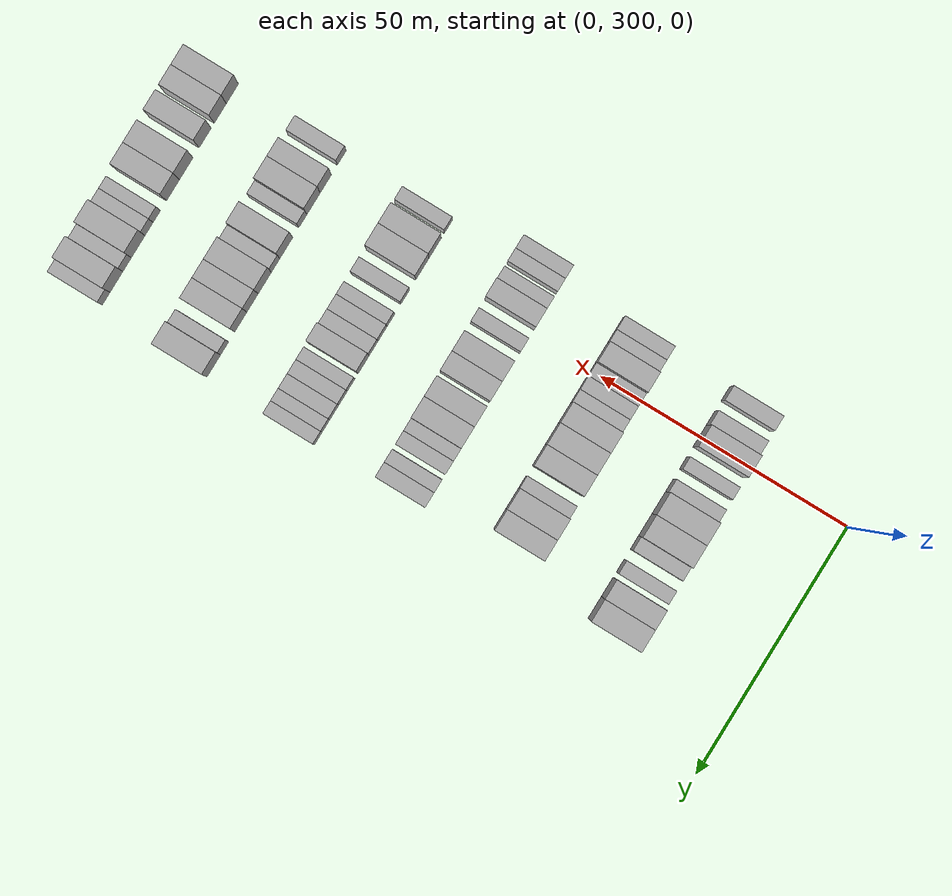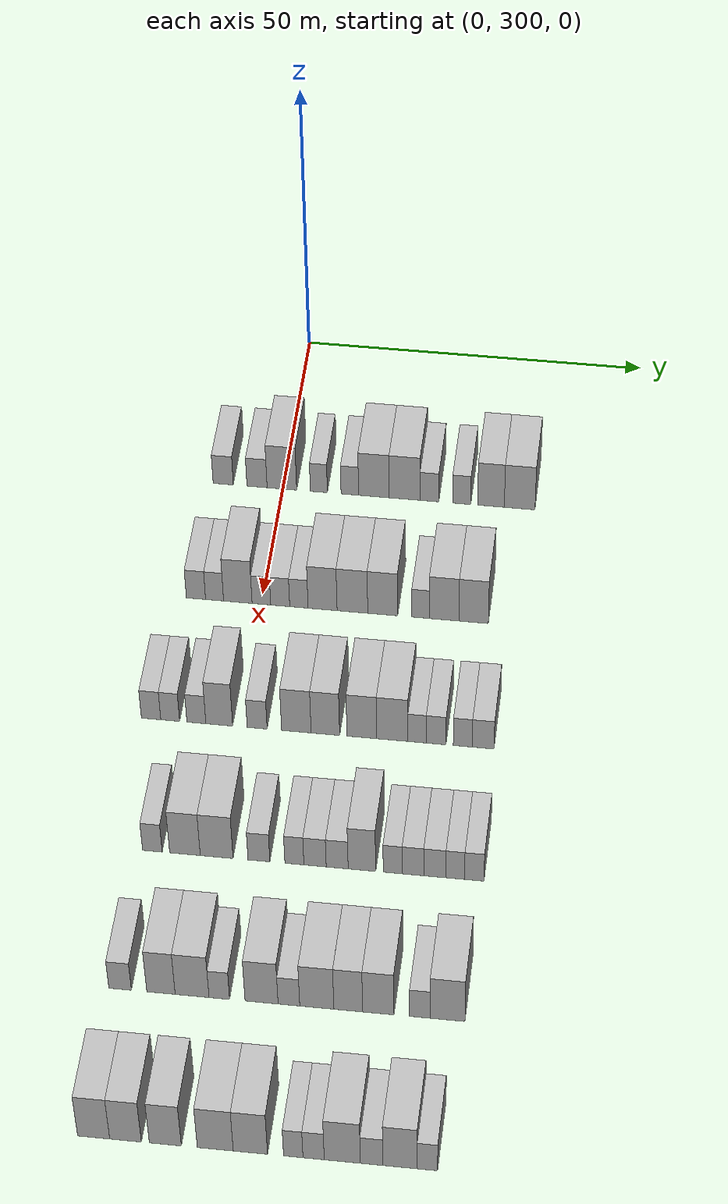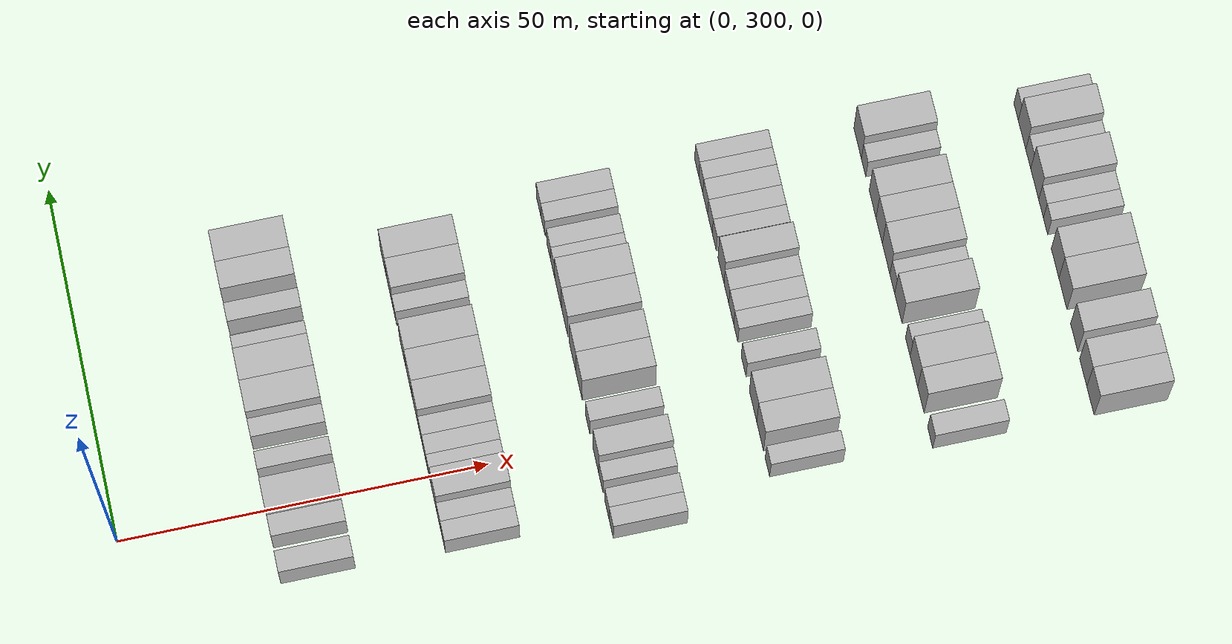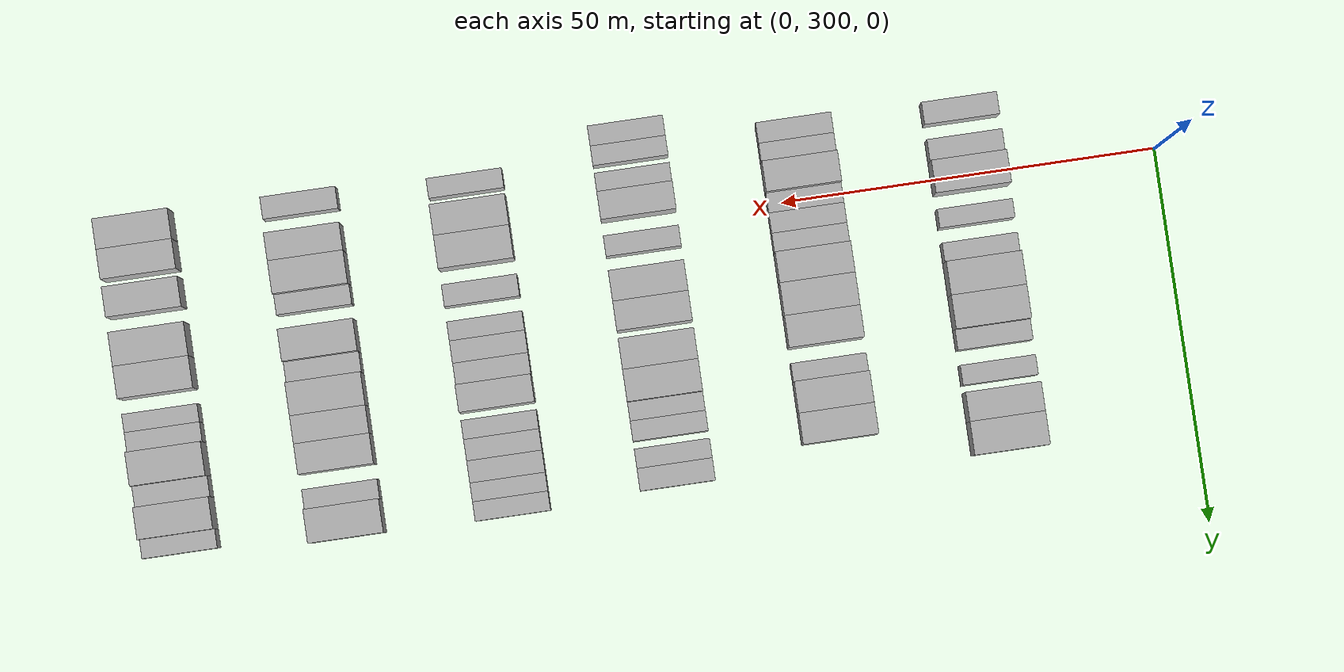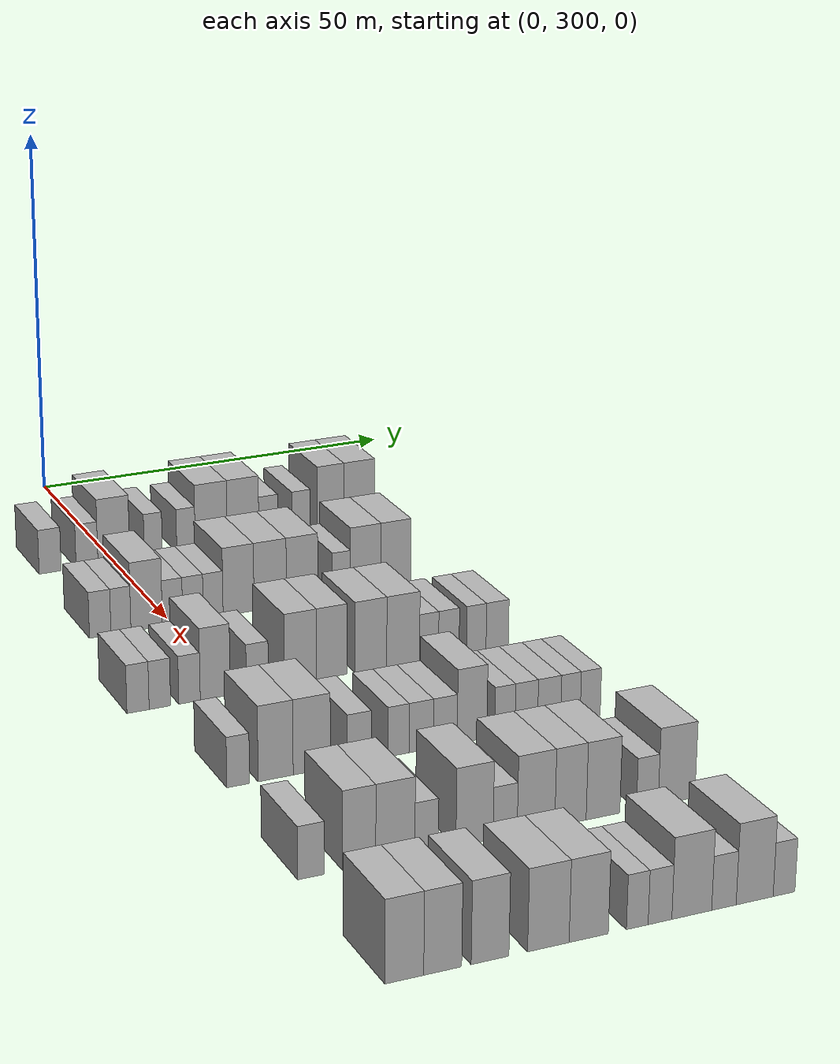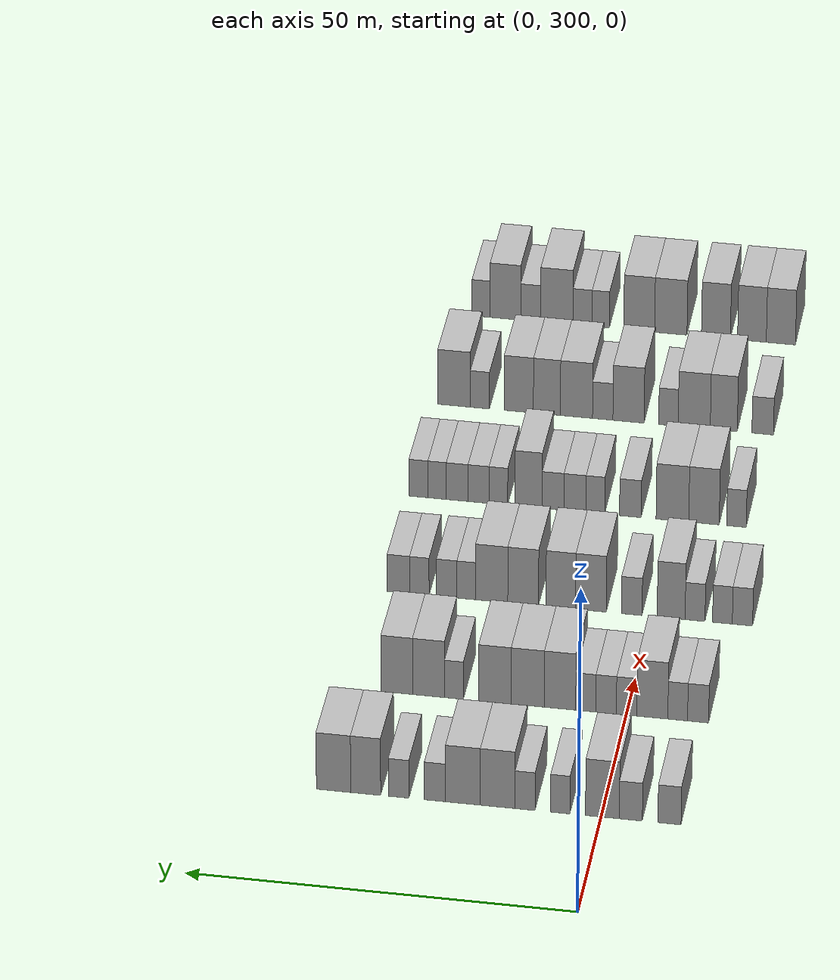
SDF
<sdf version="1.6">
 <world name="default">
  <model name="building_167">
   <static>1</static>
   <pose>25.0000 291.3128 0 0.000000 0.000000 0.000000</pose>
   <link name="link">
    <pose>0 0 3.00 0 0 0</pose>
    <collision name="collision"><geometry><box><size>10.0000 2.9631 6.0000</size></box></geometry></collision>
    <visual name="visual">
     <cast_shadows>0</cast_shadows>
     <geometry><box><size>10.0000 2.9631 6.0000</size></box></geometry>
     <material>
      <script>
       <uri>model://HANNAS_wall/materials/scripts</uri>
       <uri>model://HANNAS_wall/materials/textures</uri>
       <name>vrc/HANNAS_wall</name>
      </script>
     </material>
    </visual>
   </link>
  </model>
  <model name="building_168">
   <static>1</static>
   <pose>25.0000 296.2743 0 0.000000 0.000000 0.000000</pose>
   <link name="link">
    <pose>0 0 3.00 0 0 0</pose>
    <collision name="collision"><geometry><box><size>10.0000 2.9600 6.0000</size></box></geometry></collision>
    <visual name="visual">
     <cast_shadows>0</cast_shadows>
     <geometry><box><size>10.0000 2.9600 6.0000</size></box></geometry>
     <material>
      <script>
       <uri>model://HANNAS_wall/materials/scripts</uri>
       <uri>model://HANNAS_wall/materials/textures</uri>
       <name>vrc/HANNAS_wall</name>
      </script>
     </material>
    </visual>
   </link>
  </model>
  <model name="building_169">
   <static>1</static>
   <pose>25.0000 299.9233 0 0.000000 0.000000 0.000000</pose>
   <link name="link">
    <pose>0 0 4.50 0 0 0</pose>
    <collision name="collision"><geometry><box><size>10.0000 4.3380 9.0000</size></box></geometry></collision>
    <visual name="visual">
     <cast_shadows>0</cast_shadows>
     <geometry><box><size>10.0000 4.3380 9.0000</size></box></geometry>
     <material>
      <script>
       <uri>model://HANNAS_wall/materials/scripts</uri>
       <uri>model://HANNAS_wall/materials/textures</uri>
       <name>vrc/HANNAS_wall</name>
      </script>
     </material>
    </visual>
   </link>
  </model>
  <model name="building_170">
   <static>1</static>
   <pose>25.0000 305.3363 0 0.000000 0.000000 0.000000</pose>
   <link name="link">
    <pose>0 0 3.00 0 0 0</pose>
    <collision name="collision"><geometry><box><size>10.0000 2.4881 6.0000</size></box></geometry></collision>
    <visual name="visual">
     <cast_shadows>0</cast_shadows>
     <geometry><box><size>10.0000 2.4881 6.0000</size></box></geometry>
     <material>
      <script>
       <uri>model://HANNAS_wall/materials/scripts</uri>
       <uri>model://HANNAS_wall/materials/textures</uri>
       <name>vrc/HANNAS_wall</name>
      </script>
     </material>
    </visual>
   </link>
  </model>
  <model name="building_171">
   <static>1</static>
   <pose>25.0000 309.8668 0 0.000000 0.000000 0.000000</pose>
   <link name="link">
    <pose>0 0 3.00 0 0 0</pose>
    <collision name="collision"><geometry><box><size>10.0000 2.5731 6.0000</size></box></geometry></collision>
    <visual name="visual">
     <cast_shadows>0</cast_shadows>
     <geometry><box><size>10.0000 2.5731 6.0000</size></box></geometry>
     <material>
      <script>
       <uri>model://HANNAS_wall/materials/scripts</uri>
       <uri>model://HANNAS_wall/materials/textures</uri>
       <name>vrc/HANNAS_wall</name>
      </script>
     </material>
    </visual>
   </link>
  </model>
  <model name="building_172">
   <static>1</static>
   <pose>25.0000 313.3896 0 0.000000 0.000000 0.000000</pose>
   <link name="link">
    <pose>0 0 4.50 0 0 0</pose>
    <collision name="collision"><geometry><box><size>10.0000 4.4725 9.0000</size></box></geometry></collision>
    <visual name="visual">
     <cast_shadows>0</cast_shadows>
     <geometry><box><size>10.0000 4.4725 9.0000</size></box></geometry>
     <material>
      <script>
       <uri>model://HANNAS_wall/materials/scripts</uri>
       <uri>model://HANNAS_wall/materials/textures</uri>
       <name>vrc/HANNAS_wall</name>
      </script>
     </material>
    </visual>
   </link>
  </model>
  <model name="building_173">
   <static>1</static>
   <pose>25.0000 317.8674 0 0.000000 0.000000 0.000000</pose>
   <link name="link">
    <pose>0 0 4.50 0 0 0</pose>
    <collision name="collision"><geometry><box><size>10.0000 4.4831 9.0000</size></box></geometry></collision>
    <visual name="visual">
     <cast_shadows>0</cast_shadows>
     <geometry><box><size>10.0000 4.4831 9.0000</size></box></geometry>
     <material>
      <script>
       <uri>model://HANNAS_wall/materials/scripts</uri>
       <uri>model://HANNAS_wall/materials/textures</uri>
       <name>vrc/HANNAS_wall</name>
      </script>
     </material>
    </visual>
   </link>
  </model>
  <model name="building_174">
   <static>1</static>
   <pose>25.0000 321.4731 0 0.000000 0.000000 0.000000</pose>
   <link name="link">
    <pose>0 0 3.00 0 0 0</pose>
    <collision name="collision"><geometry><box><size>10.0000 2.7282 6.0000</size></box></geometry></collision>
    <visual name="visual">
     <cast_shadows>0</cast_shadows>
     <geometry><box><size>10.0000 2.7282 6.0000</size></box></geometry>
     <material>
      <script>
       <uri>model://HANNAS_wall/materials/scripts</uri>
       <uri>model://HANNAS_wall/materials/textures</uri>
       <name>vrc/HANNAS_wall</name>
      </script>
     </material>
    </visual>
   </link>
  </model>
  <model name="building_175">
   <static>1</static>
   <pose>25.0000 326.1639 0 0.000000 0.000000 0.000000</pose>
   <link name="link">
    <pose>0 0 3.00 0 0 0</pose>
    <collision name="collision"><geometry><box><size>10.0000 2.6536 6.0000</size></box></geometry></collision>
    <visual name="visual">
     <cast_shadows>0</cast_shadows>
     <geometry><box><size>10.0000 2.6536 6.0000</size></box></geometry>
     <material>
      <script>
       <uri>model://HANNAS_wall/materials/scripts</uri>
       <uri>model://HANNAS_wall/materials/textures</uri>
       <name>vrc/HANNAS_wall</name>
      </script>
     </material>
    </visual>
   </link>
  </model>
  <model name="building_176">
   <static>1</static>
   <pose>25.0000 330.4245 0 0.000000 0.000000 0.000000</pose>
   <link name="link">
    <pose>0 0 4.50 0 0 0</pose>
    <collision name="collision"><geometry><box><size>10.0000 3.8675 9.0000</size></box></geometry></collision>
    <visual name="visual">
     <cast_shadows>0</cast_shadows>
     <geometry><box><size>10.0000 3.8675 9.0000</size></box></geometry>
     <material>
      <script>
       <uri>model://HANNAS_wall/materials/scripts</uri>
       <uri>model://HANNAS_wall/materials/textures</uri>
       <name>vrc/HANNAS_wall</name>
      </script>
     </material>
    </visual>
   </link>
  </model>
  <model name="building_177">
   <static>1</static>
   <pose>25.0000 334.5843 0 0.000000 0.000000 0.000000</pose>
   <link name="link">
    <pose>0 0 4.50 0 0 0</pose>
    <collision name="collision"><geometry><box><size>10.0000 4.4522 9.0000</size></box></geometry></collision>
    <visual name="visual">
     <cast_shadows>0</cast_shadows>
     <geometry><box><size>10.0000 4.4522 9.0000</size></box></geometry>
     <material>
      <script>
       <uri>model://HANNAS_wall/materials/scripts</uri>
       <uri>model://HANNAS_wall/materials/textures</uri>
       <name>vrc/HANNAS_wall</name>
      </script>
     </material>
    </visual>
   </link>
  </model>
  <model name="building_344">
   <static>1</static>
   <pose>47.0000 290.7216 0 0.000000 0.000000 0.000000</pose>
   <link name="link">
    <pose>0 0 3.00 0 0 0</pose>
    <collision name="collision"><geometry><box><size>10.0000 2.7421 6.0000</size></box></geometry></collision>
    <visual name="visual">
     <cast_shadows>0</cast_shadows>
     <geometry><box><size>10.0000 2.7421 6.0000</size></box></geometry>
     <material>
      <script>
       <uri>model://HANNAS_wall/materials/scripts</uri>
       <uri>model://HANNAS_wall/materials/textures</uri>
       <name>vrc/HANNAS_wall</name>
      </script>
     </material>
    </visual>
   </link>
  </model>
  <model name="building_345">
   <static>1</static>
   <pose>47.0000 293.3765 0 0.000000 0.000000 0.000000</pose>
   <link name="link">
    <pose>0 0 3.00 0 0 0</pose>
    <collision name="collision"><geometry><box><size>10.0000 2.5679 6.0000</size></box></geometry></collision>
    <visual name="visual">
     <cast_shadows>0</cast_shadows>
     <geometry><box><size>10.0000 2.5679 6.0000</size></box></geometry>
     <material>
      <script>
       <uri>model://HANNAS_wall/materials/scripts</uri>
       <uri>model://HANNAS_wall/materials/textures</uri>
       <name>vrc/HANNAS_wall</name>
      </script>
     </material>
    </visual>
   </link>
  </model>
  <model name="building_346">
   <static>1</static>
   <pose>47.0000 296.6926 0 0.000000 0.000000 0.000000</pose>
   <link name="link">
    <pose>0 0 4.50 0 0 0</pose>
    <collision name="collision"><geometry><box><size>10.0000 4.0642 9.0000</size></box></geometry></collision>
    <visual name="visual">
     <cast_shadows>0</cast_shadows>
     <geometry><box><size>10.0000 4.0642 9.0000</size></box></geometry>
     <material>
      <script>
       <uri>model://HANNAS_wall/materials/scripts</uri>
       <uri>model://HANNAS_wall/materials/textures</uri>
       <name>vrc/HANNAS_wall</name>
      </script>
     </material>
    </visual>
   </link>
  </model>
  <model name="building_347">
   <static>1</static>
   <pose>47.0000 300.0499 0 0.000000 0.000000 0.000000</pose>
   <link name="link">
    <pose>0 0 3.00 0 0 0</pose>
    <collision name="collision"><geometry><box><size>10.0000 2.6505 6.0000</size></box></geometry></collision>
    <visual name="visual">
     <cast_shadows>0</cast_shadows>
     <geometry><box><size>10.0000 2.6505 6.0000</size></box></geometry>
     <material>
      <script>
       <uri>model://HANNAS_wall/materials/scripts</uri>
       <uri>model://HANNAS_wall/materials/textures</uri>
       <name>vrc/HANNAS_wall</name>
      </script>
     </material>
    </visual>
   </link>
  </model>
  <model name="building_348">
   <static>1</static>
   <pose>47.0000 302.7244 0 0.000000 0.000000 0.000000</pose>
   <link name="link">
    <pose>0 0 3.00 0 0 0</pose>
    <collision name="collision"><geometry><box><size>10.0000 2.6985 6.0000</size></box></geometry></collision>
    <visual name="visual">
     <cast_shadows>0</cast_shadows>
     <geometry><box><size>10.0000 2.6985 6.0000</size></box></geometry>
     <material>
      <script>
       <uri>model://HANNAS_wall/materials/scripts</uri>
       <uri>model://HANNAS_wall/materials/textures</uri>
       <name>vrc/HANNAS_wall</name>
      </script>
     </material>
    </visual>
   </link>
  </model>
  <model name="building_349">
   <static>1</static>
   <pose>47.0000 305.3819 0 0.000000 0.000000 0.000000</pose>
   <link name="link">
    <pose>0 0 3.00 0 0 0</pose>
    <collision name="collision"><geometry><box><size>10.0000 2.6165 6.0000</size></box></geometry></collision>
    <visual name="visual">
     <cast_shadows>0</cast_shadows>
     <geometry><box><size>10.0000 2.6165 6.0000</size></box></geometry>
     <material>
      <script>
       <uri>model://HANNAS_wall/materials/scripts</uri>
       <uri>model://HANNAS_wall/materials/textures</uri>
       <name>vrc/HANNAS_wall</name>
      </script>
     </material>
    </visual>
   </link>
  </model>
  <model name="building_350">
   <static>1</static>
   <pose>47.0000 308.7485 0 0.000000 0.000000 0.000000</pose>
   <link name="link">
    <pose>0 0 4.50 0 0 0</pose>
    <collision name="collision"><geometry><box><size>10.0000 4.1168 9.0000</size></box></geometry></collision>
    <visual name="visual">
     <cast_shadows>0</cast_shadows>
     <geometry><box><size>10.0000 4.1168 9.0000</size></box></geometry>
     <material>
      <script>
       <uri>model://HANNAS_wall/materials/scripts</uri>
       <uri>model://HANNAS_wall/materials/textures</uri>
       <name>vrc/HANNAS_wall</name>
      </script>
     </material>
    </visual>
   </link>
  </model>
  <model name="building_351">
   <static>1</static>
   <pose>47.0000 312.9780 0 0.000000 0.000000 0.000000</pose>
   <link name="link">
    <pose>0 0 4.50 0 0 0</pose>
    <collision name="collision"><geometry><box><size>10.0000 4.3422 9.0000</size></box></geometry></collision>
    <visual name="visual">
     <cast_shadows>0</cast_shadows>
     <geometry><box><size>10.0000 4.3422 9.0000</size></box></geometry>
     <material>
      <script>
       <uri>model://HANNAS_wall/materials/scripts</uri>
       <uri>model://HANNAS_wall/materials/textures</uri>
       <name>vrc/HANNAS_wall</name>
      </script>
     </material>
    </visual>
   </link>
  </model>
  <model name="building_352">
   <static>1</static>
   <pose>47.0000 317.2673 0 0.000000 0.000000 0.000000</pose>
   <link name="link">
    <pose>0 0 4.50 0 0 0</pose>
    <collision name="collision"><geometry><box><size>10.0000 4.2363 9.0000</size></box></geometry></collision>
    <visual name="visual">
     <cast_shadows>0</cast_shadows>
     <geometry><box><size>10.0000 4.2363 9.0000</size></box></geometry>
     <material>
      <script>
       <uri>model://HANNAS_wall/materials/scripts</uri>
       <uri>model://HANNAS_wall/materials/textures</uri>
       <name>vrc/HANNAS_wall</name>
      </script>
     </material>
    </visual>
   </link>
  </model>
  <model name="building_353">
   <static>1</static>
   <pose>47.0000 322.6196 0 0.000000 0.000000 0.000000</pose>
   <link name="link">
    <pose>0 0 3.00 0 0 0</pose>
    <collision name="collision"><geometry><box><size>10.0000 2.4683 6.0000</size></box></geometry></collision>
    <visual name="visual">
     <cast_shadows>0</cast_shadows>
     <geometry><box><size>10.0000 2.4683 6.0000</size></box></geometry>
     <material>
      <script>
       <uri>model://HANNAS_wall/materials/scripts</uri>
       <uri>model://HANNAS_wall/materials/textures</uri>
       <name>vrc/HANNAS_wall</name>
      </script>
     </material>
    </visual>
   </link>
  </model>
  <model name="building_354">
   <static>1</static>
   <pose>47.0000 325.9501 0 0.000000 0.000000 0.000000</pose>
   <link name="link">
    <pose>0 0 4.50 0 0 0</pose>
    <collision name="collision"><geometry><box><size>10.0000 4.1927 9.0000</size></box></geometry></collision>
    <visual name="visual">
     <cast_shadows>0</cast_shadows>
     <geometry><box><size>10.0000 4.1927 9.0000</size></box></geometry>
     <material>
      <script>
       <uri>model://HANNAS_wall/materials/scripts</uri>
       <uri>model://HANNAS_wall/materials/textures</uri>
       <name>vrc/HANNAS_wall</name>
      </script>
     </material>
    </visual>
   </link>
  </model>
  <model name="building_355">
   <static>1</static>
   <pose>47.0000 330.1200 0 0.000000 0.000000 0.000000</pose>
   <link name="link">
    <pose>0 0 4.50 0 0 0</pose>
    <collision name="collision"><geometry><box><size>10.0000 4.1470 9.0000</size></box></geometry></collision>
    <visual name="visual">
     <cast_shadows>0</cast_shadows>
     <geometry><box><size>10.0000 4.1470 9.0000</size></box></geometry>
     <material>
      <script>
       <uri>model://HANNAS_wall/materials/scripts</uri>
       <uri>model://HANNAS_wall/materials/textures</uri>
       <name>vrc/HANNAS_wall</name>
      </script>
     </material>
    </visual>
   </link>
  </model>
  <model name="building_530">
   <static>1</static>
   <pose>69.0000 287.9238 0 0.000000 0.000000 0.000000</pose>
   <link name="link">
    <pose>0 0 3.00 0 0 0</pose>
    <collision name="collision"><geometry><box><size>10.0000 2.6839 6.0000</size></box></geometry></collision>
    <visual name="visual">
     <cast_shadows>0</cast_shadows>
     <geometry><box><size>10.0000 2.6839 6.0000</size></box></geometry>
     <material>
      <script>
       <uri>model://HANNAS_wall/materials/scripts</uri>
       <uri>model://HANNAS_wall/materials/textures</uri>
       <name>vrc/HANNAS_wall</name>
      </script>
     </material>
    </visual>
   </link>
  </model>
  <model name="building_531">
   <static>1</static>
   <pose>69.0000 290.5735 0 0.000000 0.000000 0.000000</pose>
   <link name="link">
    <pose>0 0 3.00 0 0 0</pose>
    <collision name="collision"><geometry><box><size>10.0000 2.6155 6.0000</size></box></geometry></collision>
    <visual name="visual">
     <cast_shadows>0</cast_shadows>
     <geometry><box><size>10.0000 2.6155 6.0000</size></box></geometry>
     <material>
      <script>
       <uri>model://HANNAS_wall/materials/scripts</uri>
       <uri>model://HANNAS_wall/materials/textures</uri>
       <name>vrc/HANNAS_wall</name>
      </script>
     </material>
    </visual>
   </link>
  </model>
  <model name="building_532">
   <static>1</static>
   <pose>69.0000 294.1956 0 0.000000 0.000000 0.000000</pose>
   <link name="link">
    <pose>0 0 3.00 0 0 0</pose>
    <collision name="collision"><geometry><box><size>10.0000 2.6287 6.0000</size></box></geometry></collision>
    <visual name="visual">
     <cast_shadows>0</cast_shadows>
     <geometry><box><size>10.0000 2.6287 6.0000</size></box></geometry>
     <material>
      <script>
       <uri>model://HANNAS_wall/materials/scripts</uri>
       <uri>model://HANNAS_wall/materials/textures</uri>
       <name>vrc/HANNAS_wall</name>
      </script>
     </material>
    </visual>
   </link>
  </model>
  <model name="building_533">
   <static>1</static>
   <pose>69.0000 297.3626 0 0.000000 0.000000 0.000000</pose>
   <link name="link">
    <pose>0 0 4.50 0 0 0</pose>
    <collision name="collision"><geometry><box><size>10.0000 3.7054 9.0000</size></box></geometry></collision>
    <visual name="visual">
     <cast_shadows>0</cast_shadows>
     <geometry><box><size>10.0000 3.7054 9.0000</size></box></geometry>
     <material>
      <script>
       <uri>model://HANNAS_wall/materials/scripts</uri>
       <uri>model://HANNAS_wall/materials/textures</uri>
       <name>vrc/HANNAS_wall</name>
      </script>
     </material>
    </visual>
   </link>
  </model>
  <model name="building_534">
   <static>1</static>
   <pose>69.0000 302.5916 0 0.000000 0.000000 0.000000</pose>
   <link name="link">
    <pose>0 0 3.00 0 0 0</pose>
    <collision name="collision"><geometry><box><size>10.0000 2.7524 6.0000</size></box></geometry></collision>
    <visual name="visual">
     <cast_shadows>0</cast_shadows>
     <geometry><box><size>10.0000 2.7524 6.0000</size></box></geometry>
     <material>
      <script>
       <uri>model://HANNAS_wall/materials/scripts</uri>
       <uri>model://HANNAS_wall/materials/textures</uri>
       <name>vrc/HANNAS_wall</name>
      </script>
     </material>
    </visual>
   </link>
  </model>
  <model name="building_535">
   <static>1</static>
   <pose>69.0000 308.0016 0 0.000000 0.000000 0.000000</pose>
   <link name="link">
    <pose>0 0 4.50 0 0 0</pose>
    <collision name="collision"><geometry><box><size>10.0000 4.0677 9.0000</size></box></geometry></collision>
    <visual name="visual">
     <cast_shadows>0</cast_shadows>
     <geometry><box><size>10.0000 4.0677 9.0000</size></box></geometry>
     <material>
      <script>
       <uri>model://HANNAS_wall/materials/scripts</uri>
       <uri>model://HANNAS_wall/materials/textures</uri>
       <name>vrc/HANNAS_wall</name>
      </script>
     </material>
    </visual>
   </link>
  </model>
  <model name="building_536">
   <static>1</static>
   <pose>69.0000 311.9994 0 0.000000 0.000000 0.000000</pose>
   <link name="link">
    <pose>0 0 4.50 0 0 0</pose>
    <collision name="collision"><geometry><box><size>10.0000 3.9279 9.0000</size></box></geometry></collision>
    <visual name="visual">
     <cast_shadows>0</cast_shadows>
     <geometry><box><size>10.0000 3.9279 9.0000</size></box></geometry>
     <material>
      <script>
       <uri>model://HANNAS_wall/materials/scripts</uri>
       <uri>model://HANNAS_wall/materials/textures</uri>
       <name>vrc/HANNAS_wall</name>
      </script>
     </material>
    </visual>
   </link>
  </model>
  <model name="building_537">
   <static>1</static>
   <pose>69.0000 317.0117 0 0.000000 0.000000 0.000000</pose>
   <link name="link">
    <pose>0 0 4.50 0 0 0</pose>
    <collision name="collision"><geometry><box><size>10.0000 4.0968 9.0000</size></box></geometry></collision>
    <visual name="visual">
     <cast_shadows>0</cast_shadows>
     <geometry><box><size>10.0000 4.0968 9.0000</size></box></geometry>
     <material>
      <script>
       <uri>model://HANNAS_wall/materials/scripts</uri>
       <uri>model://HANNAS_wall/materials/textures</uri>
       <name>vrc/HANNAS_wall</name>
      </script>
     </material>
    </visual>
   </link>
  </model>
  <model name="building_538">
   <static>1</static>
   <pose>69.0000 321.1998 0 0.000000 0.000000 0.000000</pose>
   <link name="link">
    <pose>0 0 4.50 0 0 0</pose>
    <collision name="collision"><geometry><box><size>10.0000 4.2794 9.0000</size></box></geometry></collision>
    <visual name="visual">
     <cast_shadows>0</cast_shadows>
     <geometry><box><size>10.0000 4.2794 9.0000</size></box></geometry>
     <material>
      <script>
       <uri>model://HANNAS_wall/materials/scripts</uri>
       <uri>model://HANNAS_wall/materials/textures</uri>
       <name>vrc/HANNAS_wall</name>
      </script>
     </material>
    </visual>
   </link>
  </model>
  <model name="building_539">
   <static>1</static>
   <pose>69.0000 324.5851 0 0.000000 0.000000 0.000000</pose>
   <link name="link">
    <pose>0 0 3.00 0 0 0</pose>
    <collision name="collision"><geometry><box><size>10.0000 2.4911 6.0000</size></box></geometry></collision>
    <visual name="visual">
     <cast_shadows>0</cast_shadows>
     <geometry><box><size>10.0000 2.4911 6.0000</size></box></geometry>
     <material>
      <script>
       <uri>model://HANNAS_wall/materials/scripts</uri>
       <uri>model://HANNAS_wall/materials/textures</uri>
       <name>vrc/HANNAS_wall</name>
      </script>
     </material>
    </visual>
   </link>
  </model>
  <model name="building_540">
   <static>1</static>
   <pose>69.0000 327.1861 0 0.000000 0.000000 0.000000</pose>
   <link name="link">
    <pose>0 0 3.00 0 0 0</pose>
    <collision name="collision"><geometry><box><size>10.0000 2.7109 6.0000</size></box></geometry></collision>
    <visual name="visual">
     <cast_shadows>0</cast_shadows>
     <geometry><box><size>10.0000 2.7109 6.0000</size></box></geometry>
     <material>
      <script>
       <uri>model://HANNAS_wall/materials/scripts</uri>
       <uri>model://HANNAS_wall/materials/textures</uri>
       <name>vrc/HANNAS_wall</name>
      </script>
     </material>
    </visual>
   </link>
  </model>
  <model name="building_541">
   <static>1</static>
   <pose>69.0000 330.8364 0 0.000000 0.000000 0.000000</pose>
   <link name="link">
    <pose>0 0 3.00 0 0 0</pose>
    <collision name="collision"><geometry><box><size>10.0000 2.5897 6.0000</size></box></geometry></collision>
    <visual name="visual">
     <cast_shadows>0</cast_shadows>
     <geometry><box><size>10.0000 2.5897 6.0000</size></box></geometry>
     <material>
      <script>
       <uri>model://HANNAS_wall/materials/scripts</uri>
       <uri>model://HANNAS_wall/materials/textures</uri>
       <name>vrc/HANNAS_wall</name>
      </script>
     </material>
    </visual>
   </link>
  </model>
  <model name="building_542">
   <static>1</static>
   <pose>69.0000 333.6240 0 0.000000 0.000000 0.000000</pose>
   <link name="link">
    <pose>0 0 3.00 0 0 0</pose>
    <collision name="collision"><geometry><box><size>10.0000 2.9855 6.0000</size></box></geometry></collision>
    <visual name="visual">
     <cast_shadows>0</cast_shadows>
     <geometry><box><size>10.0000 2.9855 6.0000</size></box></geometry>
     <material>
      <script>
       <uri>model://HANNAS_wall/materials/scripts</uri>
       <uri>model://HANNAS_wall/materials/textures</uri>
       <name>vrc/HANNAS_wall</name>
      </script>
     </material>
    </visual>
   </link>
  </model>
  <model name="building_729">
   <static>1</static>
   <pose>91.0000 291.7099 0 0.000000 0.000000 0.000000</pose>
   <link name="link">
    <pose>0 0 3.00 0 0 0</pose>
    <collision name="collision"><geometry><box><size>10.0000 2.6363 6.0000</size></box></geometry></collision>
    <visual name="visual">
     <cast_shadows>0</cast_shadows>
     <geometry><box><size>10.0000 2.6363 6.0000</size></box></geometry>
     <material>
      <script>
       <uri>model://HANNAS_wall/materials/scripts</uri>
       <uri>model://HANNAS_wall/materials/textures</uri>
       <name>vrc/HANNAS_wall</name>
      </script>
     </material>
    </visual>
   </link>
  </model>
  <model name="building_730">
   <static>1</static>
   <pose>91.0000 296.0781 0 0.000000 0.000000 0.000000</pose>
   <link name="link">
    <pose>0 0 4.50 0 0 0</pose>
    <collision name="collision"><geometry><box><size>10.0000 4.1002 9.0000</size></box></geometry></collision>
    <visual name="visual">
     <cast_shadows>0</cast_shadows>
     <geometry><box><size>10.0000 4.1002 9.0000</size></box></geometry>
     <material>
      <script>
       <uri>model://HANNAS_wall/materials/scripts</uri>
       <uri>model://HANNAS_wall/materials/textures</uri>
       <name>vrc/HANNAS_wall</name>
      </script>
     </material>
    </visual>
   </link>
  </model>
  <model name="building_731">
   <static>1</static>
   <pose>91.0000 300.3259 0 0.000000 0.000000 0.000000</pose>
   <link name="link">
    <pose>0 0 4.50 0 0 0</pose>
    <collision name="collision"><geometry><box><size>10.0000 4.3953 9.0000</size></box></geometry></collision>
    <visual name="visual">
     <cast_shadows>0</cast_shadows>
     <geometry><box><size>10.0000 4.3953 9.0000</size></box></geometry>
     <material>
      <script>
       <uri>model://HANNAS_wall/materials/scripts</uri>
       <uri>model://HANNAS_wall/materials/textures</uri>
       <name>vrc/HANNAS_wall</name>
      </script>
     </material>
    </visual>
   </link>
  </model>
  <model name="building_732">
   <static>1</static>
   <pose>91.0000 305.9848 0 0.000000 0.000000 0.000000</pose>
   <link name="link">
    <pose>0 0 3.00 0 0 0</pose>
    <collision name="collision"><geometry><box><size>10.0000 2.9226 6.0000</size></box></geometry></collision>
    <visual name="visual">
     <cast_shadows>0</cast_shadows>
     <geometry><box><size>10.0000 2.9226 6.0000</size></box></geometry>
     <material>
      <script>
       <uri>model://HANNAS_wall/materials/scripts</uri>
       <uri>model://HANNAS_wall/materials/textures</uri>
       <name>vrc/HANNAS_wall</name>
      </script>
     </material>
    </visual>
   </link>
  </model>
  <model name="building_733">
   <static>1</static>
   <pose>91.0000 310.7127 0 0.000000 0.000000 0.000000</pose>
   <link name="link">
    <pose>0 0 3.00 0 0 0</pose>
    <collision name="collision"><geometry><box><size>10.0000 2.5331 6.0000</size></box></geometry></collision>
    <visual name="visual">
     <cast_shadows>0</cast_shadows>
     <geometry><box><size>10.0000 2.5331 6.0000</size></box></geometry>
     <material>
      <script>
       <uri>model://HANNAS_wall/materials/scripts</uri>
       <uri>model://HANNAS_wall/materials/textures</uri>
       <name>vrc/HANNAS_wall</name>
      </script>
     </material>
    </visual>
   </link>
  </model>
  <model name="building_734">
   <static>1</static>
   <pose>91.0000 313.4680 0 0.000000 0.000000 0.000000</pose>
   <link name="link">
    <pose>0 0 3.00 0 0 0</pose>
    <collision name="collision"><geometry><box><size>10.0000 2.9776 6.0000</size></box></geometry></collision>
    <visual name="visual">
     <cast_shadows>0</cast_shadows>
     <geometry><box><size>10.0000 2.9776 6.0000</size></box></geometry>
     <material>
      <script>
       <uri>model://HANNAS_wall/materials/scripts</uri>
       <uri>model://HANNAS_wall/materials/textures</uri>
       <name>vrc/HANNAS_wall</name>
      </script>
     </material>
    </visual>
   </link>
  </model>
  <model name="building_735">
   <static>1</static>
   <pose>91.0000 316.4192 0 0.000000 0.000000 0.000000</pose>
   <link name="link">
    <pose>0 0 3.00 0 0 0</pose>
    <collision name="collision"><geometry><box><size>10.0000 2.9248 6.0000</size></box></geometry></collision>
    <visual name="visual">
     <cast_shadows>0</cast_shadows>
     <geometry><box><size>10.0000 2.9248 6.0000</size></box></geometry>
     <material>
      <script>
       <uri>model://HANNAS_wall/materials/scripts</uri>
       <uri>model://HANNAS_wall/materials/textures</uri>
       <name>vrc/HANNAS_wall</name>
      </script>
     </material>
    </visual>
   </link>
  </model>
  <model name="building_736">
   <static>1</static>
   <pose>91.0000 319.7151 0 0.000000 0.000000 0.000000</pose>
   <link name="link">
    <pose>0 0 4.50 0 0 0</pose>
    <collision name="collision"><geometry><box><size>10.0000 3.6670 9.0000</size></box></geometry></collision>
    <visual name="visual">
     <cast_shadows>0</cast_shadows>
     <geometry><box><size>10.0000 3.6670 9.0000</size></box></geometry>
     <material>
      <script>
       <uri>model://HANNAS_wall/materials/scripts</uri>
       <uri>model://HANNAS_wall/materials/textures</uri>
       <name>vrc/HANNAS_wall</name>
      </script>
     </material>
    </visual>
   </link>
  </model>
  <model name="building_737">
   <static>1</static>
   <pose>91.0000 323.8103 0 0.000000 0.000000 0.000000</pose>
   <link name="link">
    <pose>0 0 3.00 0 0 0</pose>
    <collision name="collision"><geometry><box><size>10.0000 2.5235 6.0000</size></box></geometry></collision>
    <visual name="visual">
     <cast_shadows>0</cast_shadows>
     <geometry><box><size>10.0000 2.5235 6.0000</size></box></geometry>
     <material>
      <script>
       <uri>model://HANNAS_wall/materials/scripts</uri>
       <uri>model://HANNAS_wall/materials/textures</uri>
       <name>vrc/HANNAS_wall</name>
      </script>
     </material>
    </visual>
   </link>
  </model>
  <model name="building_738">
   <static>1</static>
   <pose>91.0000 326.4928 0 0.000000 0.000000 0.000000</pose>
   <link name="link">
    <pose>0 0 3.00 0 0 0</pose>
    <collision name="collision"><geometry><box><size>10.0000 2.8413 6.0000</size></box></geometry></collision>
    <visual name="visual">
     <cast_shadows>0</cast_shadows>
     <geometry><box><size>10.0000 2.8413 6.0000</size></box></geometry>
     <material>
      <script>
       <uri>model://HANNAS_wall/materials/scripts</uri>
       <uri>model://HANNAS_wall/materials/textures</uri>
       <name>vrc/HANNAS_wall</name>
      </script>
     </material>
    </visual>
   </link>
  </model>
  <model name="building_739">
   <static>1</static>
   <pose>91.0000 329.3805 0 0.000000 0.000000 0.000000</pose>
   <link name="link">
    <pose>0 0 3.00 0 0 0</pose>
    <collision name="collision"><geometry><box><size>10.0000 2.9342 6.0000</size></box></geometry></collision>
    <visual name="visual">
     <cast_shadows>0</cast_shadows>
     <geometry><box><size>10.0000 2.9342 6.0000</size></box></geometry>
     <material>
      <script>
       <uri>model://HANNAS_wall/materials/scripts</uri>
       <uri>model://HANNAS_wall/materials/textures</uri>
       <name>vrc/HANNAS_wall</name>
      </script>
     </material>
    </visual>
   </link>
  </model>
  <model name="building_740">
   <static>1</static>
   <pose>91.0000 332.0927 0 0.000000 0.000000 0.000000</pose>
   <link name="link">
    <pose>0 0 3.00 0 0 0</pose>
    <collision name="collision"><geometry><box><size>10.0000 2.4902 6.0000</size></box></geometry></collision>
    <visual name="visual">
     <cast_shadows>0</cast_shadows>
     <geometry><box><size>10.0000 2.4902 6.0000</size></box></geometry>
     <material>
      <script>
       <uri>model://HANNAS_wall/materials/scripts</uri>
       <uri>model://HANNAS_wall/materials/textures</uri>
       <name>vrc/HANNAS_wall</name>
      </script>
     </material>
    </visual>
   </link>
  </model>
  <model name="building_741">
   <static>1</static>
   <pose>91.0000 334.6241 0 0.000000 0.000000 0.000000</pose>
   <link name="link">
    <pose>0 0 3.00 0 0 0</pose>
    <collision name="collision"><geometry><box><size>10.0000 2.5726 6.0000</size></box></geometry></collision>
    <visual name="visual">
     <cast_shadows>0</cast_shadows>
     <geometry><box><size>10.0000 2.5726 6.0000</size></box></geometry>
     <material>
      <script>
       <uri>model://HANNAS_wall/materials/scripts</uri>
       <uri>model://HANNAS_wall/materials/textures</uri>
       <name>vrc/HANNAS_wall</name>
      </script>
     </material>
    </visual>
   </link>
  </model>
  <model name="building_923">
   <static>1</static>
   <pose>113.0000 291.1240 0 0.000000 0.000000 0.000000</pose>
   <link name="link">
    <pose>0 0 3.00 0 0 0</pose>
    <collision name="collision"><geometry><box><size>10.0000 2.9368 6.0000</size></box></geometry></collision>
    <visual name="visual">
     <cast_shadows>0</cast_shadows>
     <geometry><box><size>10.0000 2.9368 6.0000</size></box></geometry>
     <material>
      <script>
       <uri>model://HANNAS_wall/materials/scripts</uri>
       <uri>model://HANNAS_wall/materials/textures</uri>
       <name>vrc/HANNAS_wall</name>
      </script>
     </material>
    </visual>
   </link>
  </model>
  <model name="building_924">
   <static>1</static>
   <pose>113.0000 296.4336 0 0.000000 0.000000 0.000000</pose>
   <link name="link">
    <pose>0 0 4.50 0 0 0</pose>
    <collision name="collision"><geometry><box><size>10.0000 3.6825 9.0000</size></box></geometry></collision>
    <visual name="visual">
     <cast_shadows>0</cast_shadows>
     <geometry><box><size>10.0000 3.6825 9.0000</size></box></geometry>
     <material>
      <script>
       <uri>model://HANNAS_wall/materials/scripts</uri>
       <uri>model://HANNAS_wall/materials/textures</uri>
       <name>vrc/HANNAS_wall</name>
      </script>
     </material>
    </visual>
   </link>
  </model>
  <model name="building_925">
   <static>1</static>
   <pose>113.0000 300.4691 0 0.000000 0.000000 0.000000</pose>
   <link name="link">
    <pose>0 0 4.50 0 0 0</pose>
    <collision name="collision"><geometry><box><size>10.0000 4.3886 9.0000</size></box></geometry></collision>
    <visual name="visual">
     <cast_shadows>0</cast_shadows>
     <geometry><box><size>10.0000 4.3886 9.0000</size></box></geometry>
     <material>
      <script>
       <uri>model://HANNAS_wall/materials/scripts</uri>
       <uri>model://HANNAS_wall/materials/textures</uri>
       <name>vrc/HANNAS_wall</name>
      </script>
     </material>
    </visual>
   </link>
  </model>
  <model name="building_926">
   <static>1</static>
   <pose>113.0000 303.9956 0 0.000000 0.000000 0.000000</pose>
   <link name="link">
    <pose>0 0 3.00 0 0 0</pose>
    <collision name="collision"><geometry><box><size>10.0000 2.6643 6.0000</size></box></geometry></collision>
    <visual name="visual">
     <cast_shadows>0</cast_shadows>
     <geometry><box><size>10.0000 2.6643 6.0000</size></box></geometry>
     <material>
      <script>
       <uri>model://HANNAS_wall/materials/scripts</uri>
       <uri>model://HANNAS_wall/materials/textures</uri>
       <name>vrc/HANNAS_wall</name>
      </script>
     </material>
    </visual>
   </link>
  </model>
  <model name="building_927">
   <static>1</static>
   <pose>113.0000 309.4615 0 0.000000 0.000000 0.000000</pose>
   <link name="link">
    <pose>0 0 4.50 0 0 0</pose>
    <collision name="collision"><geometry><box><size>10.0000 4.2675 9.0000</size></box></geometry></collision>
    <visual name="visual">
     <cast_shadows>0</cast_shadows>
     <geometry><box><size>10.0000 4.2675 9.0000</size></box></geometry>
     <material>
      <script>
       <uri>model://HANNAS_wall/materials/scripts</uri>
       <uri>model://HANNAS_wall/materials/textures</uri>
       <name>vrc/HANNAS_wall</name>
      </script>
     </material>
    </visual>
   </link>
  </model>
  <model name="building_928">
   <static>1</static>
   <pose>113.0000 312.9935 0 0.000000 0.000000 0.000000</pose>
   <link name="link">
    <pose>0 0 3.00 0 0 0</pose>
    <collision name="collision"><geometry><box><size>10.0000 2.7965 6.0000</size></box></geometry></collision>
    <visual name="visual">
     <cast_shadows>0</cast_shadows>
     <geometry><box><size>10.0000 2.7965 6.0000</size></box></geometry>
     <material>
      <script>
       <uri>model://HANNAS_wall/materials/scripts</uri>
       <uri>model://HANNAS_wall/materials/textures</uri>
       <name>vrc/HANNAS_wall</name>
      </script>
     </material>
    </visual>
   </link>
  </model>
  <model name="building_929">
   <static>1</static>
   <pose>113.0000 316.5945 0 0.000000 0.000000 0.000000</pose>
   <link name="link">
    <pose>0 0 4.50 0 0 0</pose>
    <collision name="collision"><geometry><box><size>10.0000 4.4056 9.0000</size></box></geometry></collision>
    <visual name="visual">
     <cast_shadows>0</cast_shadows>
     <geometry><box><size>10.0000 4.4056 9.0000</size></box></geometry>
     <material>
      <script>
       <uri>model://HANNAS_wall/materials/scripts</uri>
       <uri>model://HANNAS_wall/materials/textures</uri>
       <name>vrc/HANNAS_wall</name>
      </script>
     </material>
    </visual>
   </link>
  </model>
  <model name="building_930">
   <static>1</static>
   <pose>113.0000 320.6505 0 0.000000 0.000000 0.000000</pose>
   <link name="link">
    <pose>0 0 4.50 0 0 0</pose>
    <collision name="collision"><geometry><box><size>10.0000 3.7063 9.0000</size></box></geometry></collision>
    <visual name="visual">
     <cast_shadows>0</cast_shadows>
     <geometry><box><size>10.0000 3.7063 9.0000</size></box></geometry>
     <material>
      <script>
       <uri>model://HANNAS_wall/materials/scripts</uri>
       <uri>model://HANNAS_wall/materials/textures</uri>
       <name>vrc/HANNAS_wall</name>
      </script>
     </material>
    </visual>
   </link>
  </model>
  <model name="building_931">
   <static>1</static>
   <pose>113.0000 324.5174 0 0.000000 0.000000 0.000000</pose>
   <link name="link">
    <pose>0 0 4.50 0 0 0</pose>
    <collision name="collision"><geometry><box><size>10.0000 4.0276 9.0000</size></box></geometry></collision>
    <visual name="visual">
     <cast_shadows>0</cast_shadows>
     <geometry><box><size>10.0000 4.0276 9.0000</size></box></geometry>
     <material>
      <script>
       <uri>model://HANNAS_wall/materials/scripts</uri>
       <uri>model://HANNAS_wall/materials/textures</uri>
       <name>vrc/HANNAS_wall</name>
      </script>
     </material>
    </visual>
   </link>
  </model>
  <model name="building_932">
   <static>1</static>
   <pose>113.0000 329.8431 0 0.000000 0.000000 0.000000</pose>
   <link name="link">
    <pose>0 0 3.00 0 0 0</pose>
    <collision name="collision"><geometry><box><size>10.0000 2.6238 6.0000</size></box></geometry></collision>
    <visual name="visual">
     <cast_shadows>0</cast_shadows>
     <geometry><box><size>10.0000 2.6238 6.0000</size></box></geometry>
     <material>
      <script>
       <uri>model://HANNAS_wall/materials/scripts</uri>
       <uri>model://HANNAS_wall/materials/textures</uri>
       <name>vrc/HANNAS_wall</name>
      </script>
     </material>
    </visual>
   </link>
  </model>
  <model name="building_933">
   <static>1</static>
   <pose>113.0000 333.3963 0 0.000000 0.000000 0.000000</pose>
   <link name="link">
    <pose>0 0 4.50 0 0 0</pose>
    <collision name="collision"><geometry><box><size>10.0000 4.4825 9.0000</size></box></geometry></collision>
    <visual name="visual">
     <cast_shadows>0</cast_shadows>
     <geometry><box><size>10.0000 4.4825 9.0000</size></box></geometry>
     <material>
      <script>
       <uri>model://HANNAS_wall/materials/scripts</uri>
       <uri>model://HANNAS_wall/materials/textures</uri>
       <name>vrc/HANNAS_wall</name>
      </script>
     </material>
    </visual>
   </link>
  </model>
  <model name="building_1110">
   <static>1</static>
   <pose>135.0000 291.5432 0 0.000000 0.000000 0.000000</pose>
   <link name="link">
    <pose>0 0 4.50 0 0 0</pose>
    <collision name="collision"><geometry><box><size>10.0000 4.0355 9.0000</size></box></geometry></collision>
    <visual name="visual">
     <cast_shadows>0</cast_shadows>
     <geometry><box><size>10.0000 4.0355 9.0000</size></box></geometry>
     <material>
      <script>
       <uri>model://HANNAS_wall/materials/scripts</uri>
       <uri>model://HANNAS_wall/materials/textures</uri>
       <name>vrc/HANNAS_wall</name>
      </script>
     </material>
    </visual>
   </link>
  </model>
  <model name="building_1111">
   <static>1</static>
   <pose>135.0000 295.5510 0 0.000000 0.000000 0.000000</pose>
   <link name="link">
    <pose>0 0 4.50 0 0 0</pose>
    <collision name="collision"><geometry><box><size>10.0000 3.9800 9.0000</size></box></geometry></collision>
    <visual name="visual">
     <cast_shadows>0</cast_shadows>
     <geometry><box><size>10.0000 3.9800 9.0000</size></box></geometry>
     <material>
      <script>
       <uri>model://HANNAS_wall/materials/scripts</uri>
       <uri>model://HANNAS_wall/materials/textures</uri>
       <name>vrc/HANNAS_wall</name>
      </script>
     </material>
    </visual>
   </link>
  </model>
  <model name="building_1112">
   <static>1</static>
   <pose>135.0000 300.5487 0 0.000000 0.000000 0.000000</pose>
   <link name="link">
    <pose>0 0 4.50 0 0 0</pose>
    <collision name="collision"><geometry><box><size>10.0000 4.0154 9.0000</size></box></geometry></collision>
    <visual name="visual">
     <cast_shadows>0</cast_shadows>
     <geometry><box><size>10.0000 4.0154 9.0000</size></box></geometry>
     <material>
      <script>
       <uri>model://HANNAS_wall/materials/scripts</uri>
       <uri>model://HANNAS_wall/materials/textures</uri>
       <name>vrc/HANNAS_wall</name>
      </script>
     </material>
    </visual>
   </link>
  </model>
  <model name="building_1113">
   <static>1</static>
   <pose>135.0000 306.8044 0 0.000000 0.000000 0.000000</pose>
   <link name="link">
    <pose>0 0 4.50 0 0 0</pose>
    <collision name="collision"><geometry><box><size>10.0000 4.4960 9.0000</size></box></geometry></collision>
    <visual name="visual">
     <cast_shadows>0</cast_shadows>
     <geometry><box><size>10.0000 4.4960 9.0000</size></box></geometry>
     <material>
      <script>
       <uri>model://HANNAS_wall/materials/scripts</uri>
       <uri>model://HANNAS_wall/materials/textures</uri>
       <name>vrc/HANNAS_wall</name>
      </script>
     </material>
    </visual>
   </link>
  </model>
  <model name="building_1114">
   <static>1</static>
   <pose>135.0000 311.1964 0 0.000000 0.000000 0.000000</pose>
   <link name="link">
    <pose>0 0 4.50 0 0 0</pose>
    <collision name="collision"><geometry><box><size>10.0000 4.2880 9.0000</size></box></geometry></collision>
    <visual name="visual">
     <cast_shadows>0</cast_shadows>
     <geometry><box><size>10.0000 4.2880 9.0000</size></box></geometry>
     <material>
      <script>
       <uri>model://HANNAS_wall/materials/scripts</uri>
       <uri>model://HANNAS_wall/materials/textures</uri>
       <name>vrc/HANNAS_wall</name>
      </script>
     </material>
    </visual>
   </link>
  </model>
  <model name="building_1115">
   <static>1</static>
   <pose>135.0000 316.5484 0 0.000000 0.000000 0.000000</pose>
   <link name="link">
    <pose>0 0 3.00 0 0 0</pose>
    <collision name="collision"><geometry><box><size>10.0000 2.4159 6.0000</size></box></geometry></collision>
    <visual name="visual">
     <cast_shadows>0</cast_shadows>
     <geometry><box><size>10.0000 2.4159 6.0000</size></box></geometry>
     <material>
      <script>
       <uri>model://HANNAS_wall/materials/scripts</uri>
       <uri>model://HANNAS_wall/materials/textures</uri>
       <name>vrc/HANNAS_wall</name>
      </script>
     </material>
    </visual>
   </link>
  </model>
  <model name="building_1116">
   <static>1</static>
   <pose>135.0000 319.0831 0 0.000000 0.000000 0.000000</pose>
   <link name="link">
    <pose>0 0 3.00 0 0 0</pose>
    <collision name="collision"><geometry><box><size>10.0000 2.6536 6.0000</size></box></geometry></collision>
    <visual name="visual">
     <cast_shadows>0</cast_shadows>
     <geometry><box><size>10.0000 2.6536 6.0000</size></box></geometry>
     <material>
      <script>
       <uri>model://HANNAS_wall/materials/scripts</uri>
       <uri>model://HANNAS_wall/materials/textures</uri>
       <name>vrc/HANNAS_wall</name>
      </script>
     </material>
    </visual>
   </link>
  </model>
  <model name="building_1117">
   <static>1</static>
   <pose>135.0000 322.6598 0 0.000000 0.000000 0.000000</pose>
   <link name="link">
    <pose>0 0 4.50 0 0 0</pose>
    <collision name="collision"><geometry><box><size>10.0000 4.4998 9.0000</size></box></geometry></collision>
    <visual name="visual">
     <cast_shadows>0</cast_shadows>
     <geometry><box><size>10.0000 4.4998 9.0000</size></box></geometry>
     <material>
      <script>
       <uri>model://HANNAS_wall/materials/scripts</uri>
       <uri>model://HANNAS_wall/materials/textures</uri>
       <name>vrc/HANNAS_wall</name>
      </script>
     </material>
    </visual>
   </link>
  </model>
  <model name="building_1118">
   <static>1</static>
   <pose>135.0000 326.3079 0 0.000000 0.000000 0.000000</pose>
   <link name="link">
    <pose>0 0 3.00 0 0 0</pose>
    <collision name="collision"><geometry><box><size>10.0000 2.7964 6.0000</size></box></geometry></collision>
    <visual name="visual">
     <cast_shadows>0</cast_shadows>
     <geometry><box><size>10.0000 2.7964 6.0000</size></box></geometry>
     <material>
      <script>
       <uri>model://HANNAS_wall/materials/scripts</uri>
       <uri>model://HANNAS_wall/materials/textures</uri>
       <name>vrc/HANNAS_wall</name>
      </script>
     </material>
    </visual>
   </link>
  </model>
  <model name="building_1119">
   <static>1</static>
   <pose>135.0000 329.8351 0 0.000000 0.000000 0.000000</pose>
   <link name="link">
    <pose>0 0 4.50 0 0 0</pose>
    <collision name="collision"><geometry><box><size>10.0000 4.2580 9.0000</size></box></geometry></collision>
    <visual name="visual">
     <cast_shadows>0</cast_shadows>
     <geometry><box><size>10.0000 4.2580 9.0000</size></box></geometry>
     <material>
      <script>
       <uri>model://HANNAS_wall/materials/scripts</uri>
       <uri>model://HANNAS_wall/materials/textures</uri>
       <name>vrc/HANNAS_wall</name>
      </script>
     </material>
    </visual>
   </link>
  </model>
  <model name="building_1120">
   <static>1</static>
   <pose>135.0000 333.2283 0 0.000000 0.000000 0.000000</pose>
   <link name="link">
    <pose>0 0 3.00 0 0 0</pose>
    <collision name="collision"><geometry><box><size>10.0000 2.5283 6.0000</size></box></geometry></collision>
    <visual name="visual">
     <cast_shadows>0</cast_shadows>
     <geometry><box><size>10.0000 2.5283 6.0000</size></box></geometry>
     <material>
      <script>
       <uri>model://HANNAS_wall/materials/scripts</uri>
       <uri>model://HANNAS_wall/materials/textures</uri>
       <name>vrc/HANNAS_wall</name>
      </script>
     </material>
    </visual>
   </link>
  </model>
 </world>
</sdf>
